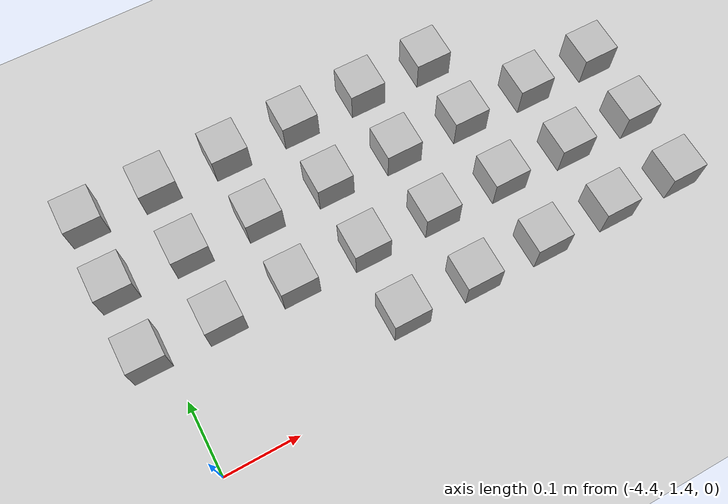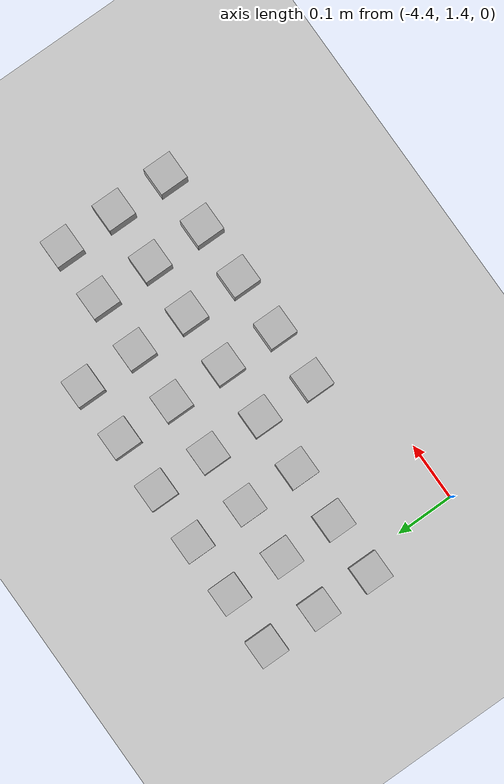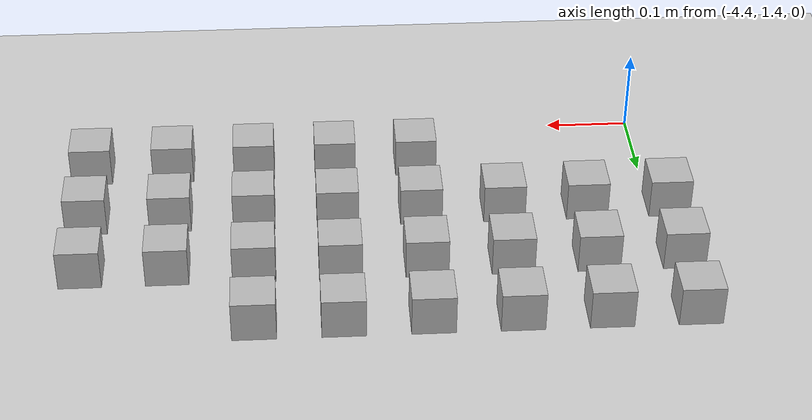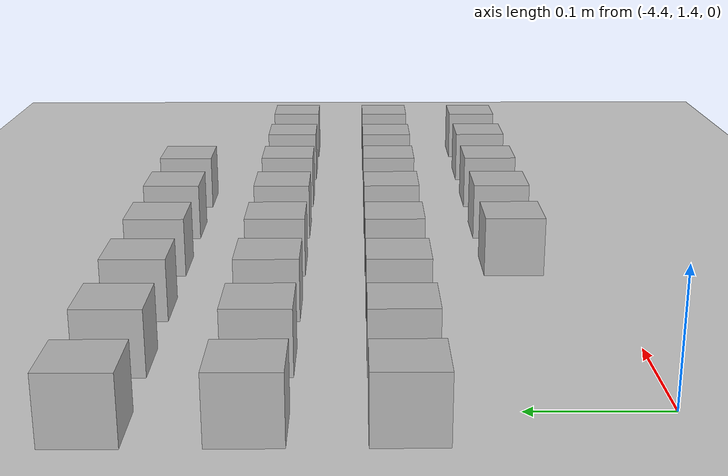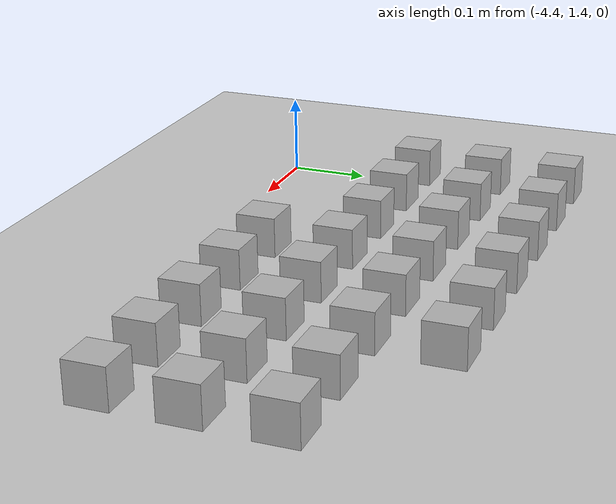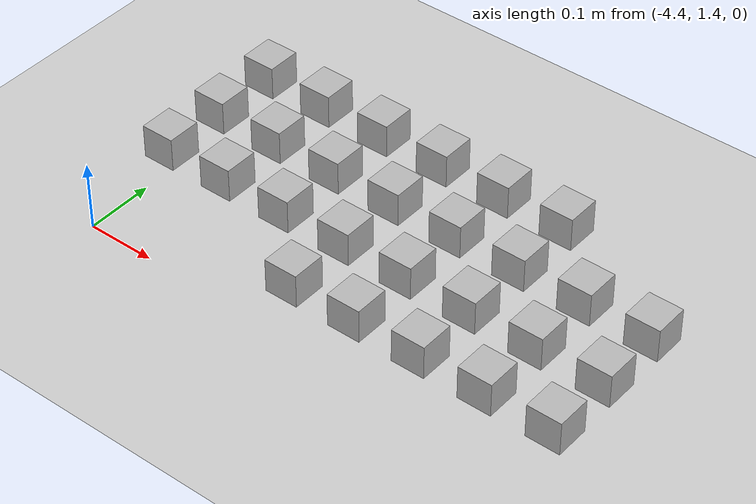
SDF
<sdf version="1.6">
 <world name="default">
  <model name="ground_plane">
   <static>1</static>
   <link name="link">
    <collision name="collision">
     <geometry><plane><normal>0 0 1</normal><size>100 100</size></plane></geometry>
     <surface><friction><ode><mu>100</mu><mu2>50</mu2></ode></friction></surface>
    </collision>
    <visual name="visual">
     <cast_shadows>0</cast_shadows>
     <geometry><plane><normal>0 0 1</normal><size>100 100</size></plane></geometry>
     <material>
      <script><uri>file://media/materials/scripts/gazebo.material</uri><name>Gazebo/Grey</name></script>
     </material>
    </visual>
   </link>
  </model>
  <model name="at11">
   <static>0</static>
   <link name="link">
    <inertial>
     <mass>0.01</mass>
     <inertia><ixx>4e-05</ixx><ixy>0</ixy><ixz>0</ixz><iyy>4e-05</iyy><iyz>0</iyz><izz>4e-05</izz></inertia>
    </inertial>
    <visual name="visual">
     <geometry><box><size>0.05 0.05 0.05</size></box></geometry>
     <material>
      <script>
       <uri>model://at0/materials/scripts</uri>
       <uri>model://at0/materials/textures</uri>
       <name>at0/Diffuse</name>
      </script>
     </material>
    </visual>
    <collision name="collision">
     <geometry><box><size>0.05 0.05 0.05</size></box></geometry>
     <surface><friction><ode><mu>0.8</mu><mu2>0.7</mu2></ode></friction></surface>
    </collision>
   </link>
   <pose>-4.12244 1.47302 0.02499 0 2e-06 0</pose>
  </model>
  <model name="at12">
   <static>0</static>
   <link name="link">
    <inertial>
     <mass>0.01</mass>
     <inertia><ixx>4e-05</ixx><ixy>0</ixy><ixz>0</ixz><iyy>4e-05</iyy><iyz>0</iyz><izz>4e-05</izz></inertia>
    </inertial>
    <visual name="visual">
     <geometry><box><size>0.05 0.05 0.05</size></box></geometry>
     <material>
      <script>
       <uri>model://at0/materials/scripts</uri>
       <uri>model://at0/materials/textures</uri>
       <name>at0/Diffuse</name>
      </script>
     </material>
    </visual>
    <collision name="collision">
     <geometry><box><size>0.05 0.05 0.05</size></box></geometry>
     <surface><friction><ode><mu>0.8</mu><mu2>0.7</mu2></ode></friction></surface>
    </collision>
   </link>
   <pose>-4.02244 1.47302 0.025 0 -2e-06 0</pose>
  </model>
  <model name="at13">
   <static>0</static>
   <link name="link">
    <inertial>
     <mass>0.01</mass>
     <inertia><ixx>4e-05</ixx><ixy>0</ixy><ixz>0</ixz><iyy>4e-05</iyy><iyz>0</iyz><izz>4e-05</izz></inertia>
    </inertial>
    <visual name="visual">
     <geometry><box><size>0.05 0.05 0.05</size></box></geometry>
     <material>
      <script>
       <uri>model://at0/materials/scripts</uri>
       <uri>model://at0/materials/textures</uri>
       <name>at0/Diffuse</name>
      </script>
     </material>
    </visual>
    <collision name="collision">
     <geometry><box><size>0.05 0.05 0.05</size></box></geometry>
     <surface><friction><ode><mu>0.8</mu><mu2>0.7</mu2></ode></friction></surface>
    </collision>
   </link>
   <pose>-3.92244 1.47302 0.02499 0 2e-06 0</pose>
  </model>
  <model name="at14">
   <static>0</static>
   <link name="link">
    <inertial>
     <mass>0.01</mass>
     <inertia><ixx>4e-05</ixx><ixy>0</ixy><ixz>0</ixz><iyy>4e-05</iyy><iyz>0</iyz><izz>4e-05</izz></inertia>
    </inertial>
    <visual name="visual">
     <geometry><box><size>0.05 0.05 0.05</size></box></geometry>
     <material>
      <script>
       <uri>model://at0/materials/scripts</uri>
       <uri>model://at0/materials/textures</uri>
       <name>at0/Diffuse</name>
      </script>
     </material>
    </visual>
    <collision name="collision">
     <geometry><box><size>0.05 0.05 0.05</size></box></geometry>
     <surface><friction><ode><mu>0.8</mu><mu2>0.7</mu2></ode></friction></surface>
    </collision>
   </link>
   <pose>-3.82244 1.47302 0.025 0 -2e-06 0</pose>
  </model>
  <model name="at15">
   <static>0</static>
   <link name="link">
    <inertial>
     <mass>0.01</mass>
     <inertia><ixx>4e-05</ixx><ixy>0</ixy><ixz>0</ixz><iyy>4e-05</iyy><iyz>0</iyz><izz>4e-05</izz></inertia>
    </inertial>
    <visual name="visual">
     <geometry><box><size>0.05 0.05 0.05</size></box></geometry>
     <material>
      <script>
       <uri>model://at0/materials/scripts</uri>
       <uri>model://at0/materials/textures</uri>
       <name>at0/Diffuse</name>
      </script>
     </material>
    </visual>
    <collision name="collision">
     <geometry><box><size>0.05 0.05 0.05</size></box></geometry>
     <surface><friction><ode><mu>0.8</mu><mu2>0.7</mu2></ode></friction></surface>
    </collision>
   </link>
   <pose>-3.72244 1.47302 0.02499 0 2e-06 0</pose>
  </model>
  <model name="at16">
   <static>0</static>
   <link name="link">
    <inertial>
     <mass>0.01</mass>
     <inertia><ixx>4e-05</ixx><ixy>0</ixy><ixz>0</ixz><iyy>4e-05</iyy><iyz>0</iyz><izz>4e-05</izz></inertia>
    </inertial>
    <visual name="visual">
     <geometry><box><size>0.05 0.05 0.05</size></box></geometry>
     <material>
      <script>
       <uri>model://at0/materials/scripts</uri>
       <uri>model://at0/materials/textures</uri>
       <name>at0/Diffuse</name>
      </script>
     </material>
    </visual>
    <collision name="collision">
     <geometry><box><size>0.05 0.05 0.05</size></box></geometry>
     <surface><friction><ode><mu>0.8</mu><mu2>0.7</mu2></ode></friction></surface>
    </collision>
   </link>
   <pose>-4.42244 1.57302 0.025 0 -2e-06 0</pose>
  </model>
  <model name="at17">
   <static>0</static>
   <link name="link">
    <inertial>
     <mass>0.01</mass>
     <inertia><ixx>4e-05</ixx><ixy>0</ixy><ixz>0</ixz><iyy>4e-05</iyy><iyz>0</iyz><izz>4e-05</izz></inertia>
    </inertial>
    <visual name="visual">
     <geometry><box><size>0.05 0.05 0.05</size></box></geometry>
     <material>
      <script>
       <uri>model://at0/materials/scripts</uri>
       <uri>model://at0/materials/textures</uri>
       <name>at0/Diffuse</name>
      </script>
     </material>
    </visual>
    <collision name="collision">
     <geometry><box><size>0.05 0.05 0.05</size></box></geometry>
     <surface><friction><ode><mu>0.8</mu><mu2>0.7</mu2></ode></friction></surface>
    </collision>
   </link>
   <pose>-4.32244 1.57302 0.02499 0 2e-06 0</pose>
  </model>
  <model name="at18">
   <static>0</static>
   <link name="link">
    <inertial>
     <mass>0.01</mass>
     <inertia><ixx>4e-05</ixx><ixy>0</ixy><ixz>0</ixz><iyy>4e-05</iyy><iyz>0</iyz><izz>4e-05</izz></inertia>
    </inertial>
    <visual name="visual">
     <geometry><box><size>0.05 0.05 0.05</size></box></geometry>
     <material>
      <script>
       <uri>model://at0/materials/scripts</uri>
       <uri>model://at0/materials/textures</uri>
       <name>at0/Diffuse</name>
      </script>
     </material>
    </visual>
    <collision name="collision">
     <geometry><box><size>0.05 0.05 0.05</size></box></geometry>
     <surface><friction><ode><mu>0.8</mu><mu2>0.7</mu2></ode></friction></surface>
    </collision>
   </link>
   <pose>-4.22244 1.57302 0.025 0 -2e-06 0</pose>
  </model>
  <model name="at19">
   <static>0</static>
   <link name="link">
    <inertial>
     <mass>0.01</mass>
     <inertia><ixx>4e-05</ixx><ixy>0</ixy><ixz>0</ixz><iyy>4e-05</iyy><iyz>0</iyz><izz>4e-05</izz></inertia>
    </inertial>
    <visual name="visual">
     <geometry><box><size>0.05 0.05 0.05</size></box></geometry>
     <material>
      <script>
       <uri>model://at0/materials/scripts</uri>
       <uri>model://at0/materials/textures</uri>
       <name>at0/Diffuse</name>
      </script>
     </material>
    </visual>
    <collision name="collision">
     <geometry><box><size>0.05 0.05 0.05</size></box></geometry>
     <surface><friction><ode><mu>0.8</mu><mu2>0.7</mu2></ode></friction></surface>
    </collision>
   </link>
   <pose>-4.12244 1.57302 0.02499 0 2e-06 0</pose>
  </model>
  <model name="at20">
   <static>0</static>
   <link name="link">
    <inertial>
     <mass>0.01</mass>
     <inertia><ixx>4e-05</ixx><ixy>0</ixy><ixz>0</ixz><iyy>4e-05</iyy><iyz>0</iyz><izz>4e-05</izz></inertia>
    </inertial>
    <visual name="visual">
     <geometry><box><size>0.05 0.05 0.05</size></box></geometry>
     <material>
      <script>
       <uri>model://at0/materials/scripts</uri>
       <uri>model://at0/materials/textures</uri>
       <name>at0/Diffuse</name>
      </script>
     </material>
    </visual>
    <collision name="collision">
     <geometry><box><size>0.05 0.05 0.05</size></box></geometry>
     <surface><friction><ode><mu>0.8</mu><mu2>0.7</mu2></ode></friction></surface>
    </collision>
   </link>
   <pose>-4.02244 1.57302 0.02499 0 2e-06 0</pose>
  </model>
  <model name="at21">
   <static>0</static>
   <link name="link">
    <inertial>
     <mass>0.01</mass>
     <inertia><ixx>4e-05</ixx><ixy>0</ixy><ixz>0</ixz><iyy>4e-05</iyy><iyz>0</iyz><izz>4e-05</izz></inertia>
    </inertial>
    <visual name="visual">
     <geometry><box><size>0.05 0.05 0.05</size></box></geometry>
     <material>
      <script>
       <uri>model://at0/materials/scripts</uri>
       <uri>model://at0/materials/textures</uri>
       <name>at0/Diffuse</name>
      </script>
     </material>
    </visual>
    <collision name="collision">
     <geometry><box><size>0.05 0.05 0.05</size></box></geometry>
     <surface><friction><ode><mu>0.8</mu><mu2>0.7</mu2></ode></friction></surface>
    </collision>
   </link>
   <pose>-3.92244 1.57302 0.025 0 -2e-06 0</pose>
  </model>
  <model name="at22">
   <static>0</static>
   <link name="link">
    <inertial>
     <mass>0.01</mass>
     <inertia><ixx>4e-05</ixx><ixy>0</ixy><ixz>0</ixz><iyy>4e-05</iyy><iyz>0</iyz><izz>4e-05</izz></inertia>
    </inertial>
    <visual name="visual">
     <geometry><box><size>0.05 0.05 0.05</size></box></geometry>
     <material>
      <script>
       <uri>model://at0/materials/scripts</uri>
       <uri>model://at0/materials/textures</uri>
       <name>at0/Diffuse</name>
      </script>
     </material>
    </visual>
    <collision name="collision">
     <geometry><box><size>0.05 0.05 0.05</size></box></geometry>
     <surface><friction><ode><mu>0.8</mu><mu2>0.7</mu2></ode></friction></surface>
    </collision>
   </link>
   <pose>-3.82244 1.57302 0.025 0 -2e-06 0</pose>
  </model>
  <model name="at23">
   <static>0</static>
   <link name="link">
    <inertial>
     <mass>0.01</mass>
     <inertia><ixx>4e-05</ixx><ixy>0</ixy><ixz>0</ixz><iyy>4e-05</iyy><iyz>0</iyz><izz>4e-05</izz></inertia>
    </inertial>
    <visual name="visual">
     <geometry><box><size>0.05 0.05 0.05</size></box></geometry>
     <material>
      <script>
       <uri>model://at0/materials/scripts</uri>
       <uri>model://at0/materials/textures</uri>
       <name>at0/Diffuse</name>
      </script>
     </material>
    </visual>
    <collision name="collision">
     <geometry><box><size>0.05 0.05 0.05</size></box></geometry>
     <surface><friction><ode><mu>0.8</mu><mu2>0.7</mu2></ode></friction></surface>
    </collision>
   </link>
   <pose>-3.72244 1.57302 0.025 0 -2e-06 0</pose>
  </model>
  <model name="at24">
   <static>0</static>
   <link name="link">
    <inertial>
     <mass>0.01</mass>
     <inertia><ixx>4e-05</ixx><ixy>0</ixy><ixz>0</ixz><iyy>4e-05</iyy><iyz>0</iyz><izz>4e-05</izz></inertia>
    </inertial>
    <visual name="visual">
     <geometry><box><size>0.05 0.05 0.05</size></box></geometry>
     <material>
      <script>
       <uri>model://at0/materials/scripts</uri>
       <uri>model://at0/materials/textures</uri>
       <name>at0/Diffuse</name>
      </script>
     </material>
    </visual>
    <collision name="collision">
     <geometry><box><size>0.05 0.05 0.05</size></box></geometry>
     <surface><friction><ode><mu>0.8</mu><mu2>0.7</mu2></ode></friction></surface>
    </collision>
   </link>
   <pose>-4.42244 1.67302 0.02499 0 2e-06 0</pose>
  </model>
  <model name="at25">
   <static>0</static>
   <link name="link">
    <inertial>
     <mass>0.01</mass>
     <inertia><ixx>4e-05</ixx><ixy>0</ixy><ixz>0</ixz><iyy>4e-05</iyy><iyz>0</iyz><izz>4e-05</izz></inertia>
    </inertial>
    <visual name="visual">
     <geometry><box><size>0.05 0.05 0.05</size></box></geometry>
     <material>
      <script>
       <uri>model://at0/materials/scripts</uri>
       <uri>model://at0/materials/textures</uri>
       <name>at0/Diffuse</name>
      </script>
     </material>
    </visual>
    <collision name="collision">
     <geometry><box><size>0.05 0.05 0.05</size></box></geometry>
     <surface><friction><ode><mu>0.8</mu><mu2>0.7</mu2></ode></friction></surface>
    </collision>
   </link>
   <pose>-4.32244 1.67302 0.02499 0 2e-06 0</pose>
  </model>
  <model name="at26">
   <static>0</static>
   <link name="link">
    <inertial>
     <mass>0.01</mass>
     <inertia><ixx>4e-05</ixx><ixy>0</ixy><ixz>0</ixz><iyy>4e-05</iyy><iyz>0</iyz><izz>4e-05</izz></inertia>
    </inertial>
    <visual name="visual">
     <geometry><box><size>0.05 0.05 0.05</size></box></geometry>
     <material>
      <script>
       <uri>model://at0/materials/scripts</uri>
       <uri>model://at0/materials/textures</uri>
       <name>at0/Diffuse</name>
      </script>
     </material>
    </visual>
    <collision name="collision">
     <geometry><box><size>0.05 0.05 0.05</size></box></geometry>
     <surface><friction><ode><mu>0.8</mu><mu2>0.7</mu2></ode></friction></surface>
    </collision>
   </link>
   <pose>-4.22244 1.67302 0.02499 0 2e-06 0</pose>
  </model>
  <model name="at27">
   <static>0</static>
   <link name="link">
    <inertial>
     <mass>0.01</mass>
     <inertia><ixx>4e-05</ixx><ixy>0</ixy><ixz>0</ixz><iyy>4e-05</iyy><iyz>0</iyz><izz>4e-05</izz></inertia>
    </inertial>
    <visual name="visual">
     <geometry><box><size>0.05 0.05 0.05</size></box></geometry>
     <material>
      <script>
       <uri>model://at0/materials/scripts</uri>
       <uri>model://at0/materials/textures</uri>
       <name>at0/Diffuse</name>
      </script>
     </material>
    </visual>
    <collision name="collision">
     <geometry><box><size>0.05 0.05 0.05</size></box></geometry>
     <surface><friction><ode><mu>0.8</mu><mu2>0.7</mu2></ode></friction></surface>
    </collision>
   </link>
   <pose>-4.12244 1.67302 0.025 0 -2e-06 0</pose>
  </model>
  <model name="at28">
   <static>0</static>
   <link name="link">
    <inertial>
     <mass>0.01</mass>
     <inertia><ixx>4e-05</ixx><ixy>0</ixy><ixz>0</ixz><iyy>4e-05</iyy><iyz>0</iyz><izz>4e-05</izz></inertia>
    </inertial>
    <visual name="visual">
     <geometry><box><size>0.05 0.05 0.05</size></box></geometry>
     <material>
      <script>
       <uri>model://at0/materials/scripts</uri>
       <uri>model://at0/materials/textures</uri>
       <name>at0/Diffuse</name>
      </script>
     </material>
    </visual>
    <collision name="collision">
     <geometry><box><size>0.05 0.05 0.05</size></box></geometry>
     <surface><friction><ode><mu>0.8</mu><mu2>0.7</mu2></ode></friction></surface>
    </collision>
   </link>
   <pose>-4.02244 1.67302 0.025 0 -2e-06 0</pose>
  </model>
  <model name="at29">
   <static>0</static>
   <link name="link">
    <inertial>
     <mass>0.01</mass>
     <inertia><ixx>4e-05</ixx><ixy>0</ixy><ixz>0</ixz><iyy>4e-05</iyy><iyz>0</iyz><izz>4e-05</izz></inertia>
    </inertial>
    <visual name="visual">
     <geometry><box><size>0.05 0.05 0.05</size></box></geometry>
     <material>
      <script>
       <uri>model://at0/materials/scripts</uri>
       <uri>model://at0/materials/textures</uri>
       <name>at0/Diffuse</name>
      </script>
     </material>
    </visual>
    <collision name="collision">
     <geometry><box><size>0.05 0.05 0.05</size></box></geometry>
     <surface><friction><ode><mu>0.8</mu><mu2>0.7</mu2></ode></friction></surface>
    </collision>
   </link>
   <pose>-3.92244 1.67302 0.025 0 -2e-06 0</pose>
  </model>
  <model name="at30">
   <static>0</static>
   <link name="link">
    <inertial>
     <mass>0.01</mass>
     <inertia><ixx>4e-05</ixx><ixy>0</ixy><ixz>0</ixz><iyy>4e-05</iyy><iyz>0</iyz><izz>4e-05</izz></inertia>
    </inertial>
    <visual name="visual">
     <geometry><box><size>0.05 0.05 0.05</size></box></geometry>
     <material>
      <script>
       <uri>model://at0/materials/scripts</uri>
       <uri>model://at0/materials/textures</uri>
       <name>at0/Diffuse</name>
      </script>
     </material>
    </visual>
    <collision name="collision">
     <geometry><box><size>0.05 0.05 0.05</size></box></geometry>
     <surface><friction><ode><mu>0.8</mu><mu2>0.7</mu2></ode></friction></surface>
    </collision>
   </link>
   <pose>-3.82244 1.67302 0.02499 0 2e-06 0</pose>
  </model>
  <model name="at31">
   <static>0</static>
   <link name="link">
    <inertial>
     <mass>0.01</mass>
     <inertia><ixx>4e-05</ixx><ixy>0</ixy><ixz>0</ixz><iyy>4e-05</iyy><iyz>0</iyz><izz>4e-05</izz></inertia>
    </inertial>
    <visual name="visual">
     <geometry><box><size>0.05 0.05 0.05</size></box></geometry>
     <material>
      <script>
       <uri>model://at0/materials/scripts</uri>
       <uri>model://at0/materials/textures</uri>
       <name>at0/Diffuse</name>
      </script>
     </material>
    </visual>
    <collision name="collision">
     <geometry><box><size>0.05 0.05 0.05</size></box></geometry>
     <surface><friction><ode><mu>0.8</mu><mu2>0.7</mu2></ode></friction></surface>
    </collision>
   </link>
   <pose>-3.72244 1.67302 0.02499 0 2e-06 0</pose>
  </model>
  <model name="at32">
   <static>0</static>
   <link name="link">
    <inertial>
     <mass>0.01</mass>
     <inertia><ixx>4e-05</ixx><ixy>0</ixy><ixz>0</ixz><iyy>4e-05</iyy><iyz>0</iyz><izz>4e-05</izz></inertia>
    </inertial>
    <visual name="visual">
     <geometry><box><size>0.05 0.05 0.05</size></box></geometry>
     <material>
      <script>
       <uri>model://at0/materials/scripts</uri>
       <uri>model://at0/materials/textures</uri>
       <name>at0/Diffuse</name>
      </script>
     </material>
    </visual>
    <collision name="collision">
     <geometry><box><size>0.05 0.05 0.05</size></box></geometry>
     <surface><friction><ode><mu>0.8</mu><mu2>0.7</mu2></ode></friction></surface>
    </collision>
   </link>
   <pose>-4.42244 1.77302 0.02499 0 2e-06 0</pose>
  </model>
  <model name="at33">
   <static>0</static>
   <link name="link">
    <inertial>
     <mass>0.01</mass>
     <inertia><ixx>4e-05</ixx><ixy>0</ixy><ixz>0</ixz><iyy>4e-05</iyy><iyz>0</iyz><izz>4e-05</izz></inertia>
    </inertial>
    <visual name="visual">
     <geometry><box><size>0.05 0.05 0.05</size></box></geometry>
     <material>
      <script>
       <uri>model://at0/materials/scripts</uri>
       <uri>model://at0/materials/textures</uri>
       <name>at0/Diffuse</name>
      </script>
     </material>
    </visual>
    <collision name="collision">
     <geometry><box><size>0.05 0.05 0.05</size></box></geometry>
     <surface><friction><ode><mu>0.8</mu><mu2>0.7</mu2></ode></friction></surface>
    </collision>
   </link>
   <pose>-4.32244 1.77302 0.025 0 -2e-06 0</pose>
  </model>
  <model name="at34">
   <static>0</static>
   <link name="link">
    <inertial>
     <mass>0.01</mass>
     <inertia><ixx>4e-05</ixx><ixy>0</ixy><ixz>0</ixz><iyy>4e-05</iyy><iyz>0</iyz><izz>4e-05</izz></inertia>
    </inertial>
    <visual name="visual">
     <geometry><box><size>0.05 0.05 0.05</size></box></geometry>
     <material>
      <script>
       <uri>model://at0/materials/scripts</uri>
       <uri>model://at0/materials/textures</uri>
       <name>at0/Diffuse</name>
      </script>
     </material>
    </visual>
    <collision name="collision">
     <geometry><box><size>0.05 0.05 0.05</size></box></geometry>
     <surface><friction><ode><mu>0.8</mu><mu2>0.7</mu2></ode></friction></surface>
    </collision>
   </link>
   <pose>-4.22244 1.77302 0.025 0 -2e-06 0</pose>
  </model>
  <model name="at35">
   <static>0</static>
   <link name="link">
    <inertial>
     <mass>0.01</mass>
     <inertia><ixx>4e-05</ixx><ixy>0</ixy><ixz>0</ixz><iyy>4e-05</iyy><iyz>0</iyz><izz>4e-05</izz></inertia>
    </inertial>
    <visual name="visual">
     <geometry><box><size>0.05 0.05 0.05</size></box></geometry>
     <material>
      <script>
       <uri>model://at0/materials/scripts</uri>
       <uri>model://at0/materials/textures</uri>
       <name>at0/Diffuse</name>
      </script>
     </material>
    </visual>
    <collision name="collision">
     <geometry><box><size>0.05 0.05 0.05</size></box></geometry>
     <surface><friction><ode><mu>0.8</mu><mu2>0.7</mu2></ode></friction></surface>
    </collision>
   </link>
   <pose>-4.12244 1.77302 0.025 0 -2e-06 0</pose>
  </model>
  <model name="at36">
   <static>0</static>
   <link name="link">
    <inertial>
     <mass>0.01</mass>
     <inertia><ixx>4e-05</ixx><ixy>0</ixy><ixz>0</ixz><iyy>4e-05</iyy><iyz>0</iyz><izz>4e-05</izz></inertia>
    </inertial>
    <visual name="visual">
     <geometry><box><size>0.05 0.05 0.05</size></box></geometry>
     <material>
      <script>
       <uri>model://at0/materials/scripts</uri>
       <uri>model://at0/materials/textures</uri>
       <name>at0/Diffuse</name>
      </script>
     </material>
    </visual>
    <collision name="collision">
     <geometry><box><size>0.05 0.05 0.05</size></box></geometry>
     <surface><friction><ode><mu>0.8</mu><mu2>0.7</mu2></ode></friction></surface>
    </collision>
   </link>
   <pose>-4.02244 1.77302 0.02499 0 2e-06 0</pose>
  </model>
  <model name="at37">
   <static>0</static>
   <link name="link">
    <inertial>
     <mass>0.01</mass>
     <inertia><ixx>4e-05</ixx><ixy>0</ixy><ixz>0</ixz><iyy>4e-05</iyy><iyz>0</iyz><izz>4e-05</izz></inertia>
    </inertial>
    <visual name="visual">
     <geometry><box><size>0.05 0.05 0.05</size></box></geometry>
     <material>
      <script>
       <uri>model://at0/materials/scripts</uri>
       <uri>model://at0/materials/textures</uri>
       <name>at0/Diffuse</name>
      </script>
     </material>
    </visual>
    <collision name="collision">
     <geometry><box><size>0.05 0.05 0.05</size></box></geometry>
     <surface><friction><ode><mu>0.8</mu><mu2>0.7</mu2></ode></friction></surface>
    </collision>
   </link>
   <pose>-3.92244 1.77302 0.02499 0 2e-06 0</pose>
  </model>
 </world>
</sdf>
